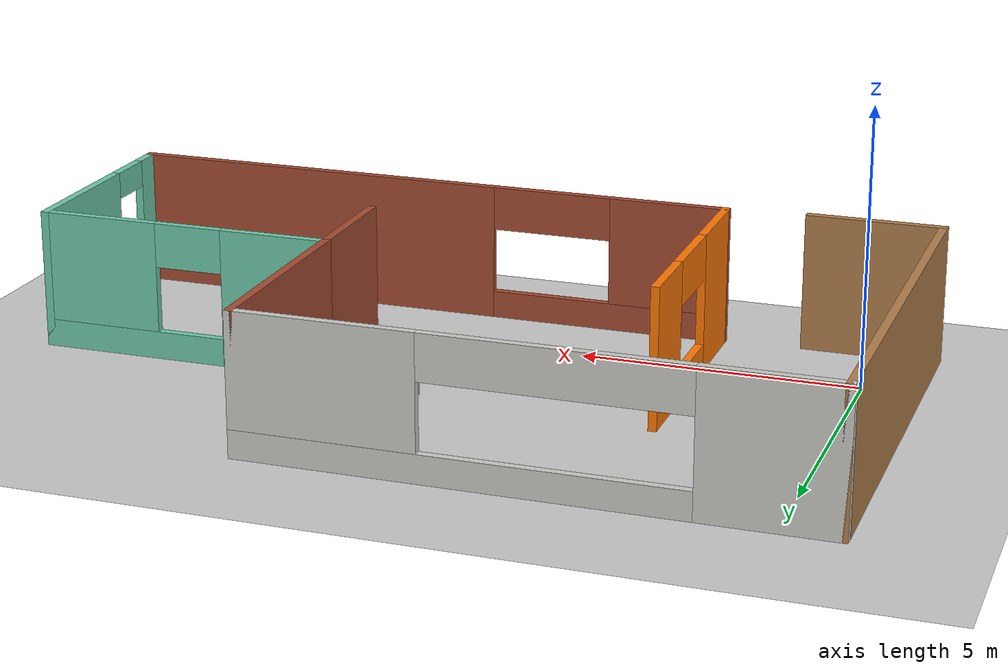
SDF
<sdf version="1.6">
 <world name="default">
  <model name="ground_plane">
   <static>1</static>
   <link name="link">
    <collision name="collision">
     <geometry><plane><normal>0 0 1</normal><size>100 100</size></plane></geometry>
     <surface><friction><ode><mu>100</mu><mu2>50</mu2></ode></friction></surface>
    </collision>
    <visual name="visual">
     <cast_shadows>0</cast_shadows>
     <geometry><plane><normal>0 0 1</normal><size>100 100</size></plane></geometry>
     <material>
      <script><uri>file://media/materials/scripts/gazebo.material</uri><name>Gazebo/Grey</name></script>
     </material>
    </visual>
   </link>
  </model>
  <model name="my_room">
   <pose>6.60739 2.31299 0 0 -0 0</pose>
   <link name="Wall_1">
    <pose>-2.675 4.05 0 0 -0 0</pose>
    <visual name="Wall_1_Visual_0">
     <pose>-3.81694 0 1.25 0 -0 0</pose>
     <geometry><box><size>2.36613 0.15 2.5</size></box></geometry>
     <material>
      <script><uri>file://media/materials/scripts/gazebo.material</uri><name>Gazebo/CeilingTiled</name></script>
      <ambient>0.666667 0.333333 1 1</ambient>
     </material>
     <meta><layer>0</layer></meta>
    </visual>
    <collision name="Wall_1_Collision_0">
     <geometry><box><size>2.36613 0.15 2.5</size></box></geometry>
     <pose>-3.81694 0 1.25 0 -0 0</pose>
    </collision>
    <visual name="Wall_1_Visual_1">
     <pose>1.18306 0 0.25 0 -0 0</pose>
     <geometry><box><size>7.63387 0.15 0.5</size></box></geometry>
     <material>
      <script><uri>file://media/materials/scripts/gazebo.material</uri><name>Gazebo/CeilingTiled</name></script>
      <ambient>0.666667 0.333333 1 1</ambient>
     </material>
     <meta><layer>0</layer></meta>
    </visual>
    <collision name="Wall_1_Collision_1">
     <geometry><box><size>7.63387 0.15 0.5</size></box></geometry>
     <pose>1.18306 0 0.25 0 -0 0</pose>
    </collision>
    <visual name="Wall_1_Visual_2">
     <pose>3.39806 0 1.5 0 -0 0</pose>
     <geometry><box><size>3.20387 0.15 2</size></box></geometry>
     <material>
      <script><uri>file://media/materials/scripts/gazebo.material</uri><name>Gazebo/CeilingTiled</name></script>
      <ambient>0.666667 0.333333 1 1</ambient>
     </material>
     <meta><layer>0</layer></meta>
    </visual>
    <collision name="Wall_1_Collision_2">
     <geometry><box><size>3.20387 0.15 2</size></box></geometry>
     <pose>3.39806 0 1.5 0 -0 0</pose>
    </collision>
    <visual name="Wall_1_Visual_3">
     <pose>-0.418873 0 2.1 0 -0 0</pose>
     <geometry><box><size>4.43 0.15 0.8</size></box></geometry>
     <material>
      <script><uri>file://media/materials/scripts/gazebo.material</uri><name>Gazebo/CeilingTiled</name></script>
      <ambient>0.666667 0.333333 1 1</ambient>
     </material>
     <meta><layer>0</layer></meta>
    </visual>
    <collision name="Wall_1_Collision_3">
     <geometry><box><size>4.43 0.15 0.8</size></box></geometry>
     <pose>-0.418873 0 2.1 0 -0 0</pose>
    </collision>
   </link>
   <link name="Wall_15">
    <pose>-3.75 -1.6 0 0 -0 1.5708</pose>
    <visual name="Wall_15_Visual_0">
     <pose>-1.50843 0 1.25 0 -0 0</pose>
     <geometry><box><size>1.73314 0.15 2.5</size></box></geometry>
     <material>
      <script><uri>file://media/materials/scripts/gazebo.material</uri><name>Gazebo/Grey</name></script>
      <ambient>0.996078 0.47451 0.0196078 1</ambient>
     </material>
     <meta><layer>0</layer></meta>
    </visual>
    <collision name="Wall_15_Collision_0">
     <geometry><box><size>1.73314 0.15 2.5</size></box></geometry>
     <pose>-1.50843 0 1.25 0 -0 0</pose>
    </collision>
    <visual name="Wall_15_Visual_1">
     <pose>0.866573 0 0.25 0 -0 0</pose>
     <geometry><box><size>3.01686 0.15 0.5</size></box></geometry>
     <material>
      <script><uri>file://media/materials/scripts/gazebo.material</uri><name>Gazebo/Grey</name></script>
      <ambient>0.996078 0.47451 0.0196078 1</ambient>
     </material>
     <meta><layer>0</layer></meta>
    </visual>
    <collision name="Wall_15_Collision_1">
     <geometry><box><size>3.01686 0.15 0.5</size></box></geometry>
     <pose>0.866573 0 0.25 0 -0 0</pose>
    </collision>
    <visual name="Wall_15_Visual_2">
     <pose>1.65755 0 1.5 0 -0 0</pose>
     <geometry><box><size>1.43491 0.15 2</size></box></geometry>
     <material>
      <script><uri>file://media/materials/scripts/gazebo.material</uri><name>Gazebo/Grey</name></script>
      <ambient>0.996078 0.47451 0.0196078 1</ambient>
     </material>
     <meta><layer>0</layer></meta>
    </visual>
    <collision name="Wall_15_Collision_2">
     <geometry><box><size>1.43491 0.15 2</size></box></geometry>
     <pose>1.65755 0 1.5 0 -0 0</pose>
    </collision>
    <visual name="Wall_15_Visual_3">
     <pose>0.14912 0 2.1 0 -0 0</pose>
     <geometry><box><size>1.58195 0.15 0.8</size></box></geometry>
     <material>
      <script><uri>file://media/materials/scripts/gazebo.material</uri><name>Gazebo/Grey</name></script>
      <ambient>0.996078 0.47451 0.0196078 1</ambient>
     </material>
     <meta><layer>0</layer></meta>
    </visual>
    <collision name="Wall_15_Collision_3">
     <geometry><box><size>1.58195 0.15 0.8</size></box></geometry>
     <pose>0.14912 0 2.1 0 -0 0</pose>
    </collision>
   </link>
   <link name="Wall_17">
    <collision name="Wall_17_Collision">
     <geometry><box><size>8.25 0.15 2.5</size></box></geometry>
     <pose>0 0 1.25 0 -0 0</pose>
    </collision>
    <visual name="Wall_17_Visual">
     <pose>0 0 1.25 0 -0 0</pose>
     <geometry><box><size>8.25 0.15 2.5</size></box></geometry>
     <material>
      <script><uri>file://media/materials/scripts/gazebo.material</uri><name>Gazebo/Wood</name></script>
      <ambient>0.435294 0.796078 0.67451 1</ambient>
     </material>
     <meta><layer>0</layer></meta>
    </visual>
    <pose>-7.6 0 0 0 0 -1.5708</pose>
   </link>
   <link name="Wall_2">
    <collision name="Wall_2_Collision">
     <geometry><box><size>4 0.15 2.5</size></box></geometry>
     <pose>0 0 1.25 0 -0 0</pose>
    </collision>
    <visual name="Wall_2_Visual">
     <pose>0 0 1.25 0 -0 0</pose>
     <geometry><box><size>4 0.15 2.5</size></box></geometry>
     <material>
      <script><uri>file://media/materials/scripts/gazebo.material</uri><name>Gazebo/Bricks</name></script>
      <ambient>1 1 1 1</ambient>
     </material>
     <meta><layer>0</layer></meta>
    </visual>
    <pose>2.25 2.125 0 0 0 -1.5708</pose>
   </link>
   <link name="Wall_21">
    <collision name="Wall_21_Collision">
     <geometry><box><size>2.5 0.15 2.5</size></box></geometry>
     <pose>0 0 1.25 0 -0 0</pose>
    </collision>
    <visual name="Wall_21_Visual">
     <pose>0 0 1.25 0 -0 0</pose>
     <geometry><box><size>2.5 0.15 2.5</size></box></geometry>
     <material>
      <script><uri>file://media/materials/scripts/gazebo.material</uri><name>Gazebo/Wood</name></script>
      <ambient>1 1 1 1</ambient>
     </material>
     <meta><layer>0</layer></meta>
    </visual>
    <pose>-6.425 -4.05 0 0 -0 0</pose>
   </link>
   <link name="Wall_3">
    <pose>4.925 0.2 0 0 -0 0</pose>
    <visual name="Wall_3_Visual_0">
     <pose>-1.73801 0 1.25 0 -0 0</pose>
     <geometry><box><size>2.02399 0.15 2.5</size></box></geometry>
     <material>
      <script><uri>file://media/materials/scripts/gazebo.material</uri><name>Gazebo/Grey</name></script>
      <ambient>0.435294 0.796078 0.67451 1</ambient>
     </material>
     <meta><layer>0</layer></meta>
    </visual>
    <collision name="Wall_3_Collision_0">
     <geometry><box><size>2.02399 0.15 2.5</size></box></geometry>
     <pose>-1.73801 0 1.25 0 -0 0</pose>
    </collision>
    <visual name="Wall_3_Visual_1">
     <pose>1.01199 0 0.25 0 -0 0</pose>
     <geometry><box><size>3.47601 0.15 0.5</size></box></geometry>
     <material>
      <script><uri>file://media/materials/scripts/gazebo.material</uri><name>Gazebo/Grey</name></script>
      <ambient>0.435294 0.796078 0.67451 1</ambient>
     </material>
     <meta><layer>0</layer></meta>
    </visual>
    <collision name="Wall_3_Collision_1">
     <geometry><box><size>3.47601 0.15 0.5</size></box></geometry>
     <pose>1.01199 0 0.25 0 -0 0</pose>
    </collision>
    <visual name="Wall_3_Visual_2">
     <pose>1.63628 0 1.5 0 -0 0</pose>
     <geometry><box><size>2.22744 0.15 2</size></box></geometry>
     <material>
      <script><uri>file://media/materials/scripts/gazebo.material</uri><name>Gazebo/Grey</name></script>
      <ambient>0.435294 0.796078 0.67451 1</ambient>
     </material>
     <meta><layer>0</layer></meta>
    </visual>
    <collision name="Wall_3_Collision_2">
     <geometry><box><size>2.22744 0.15 2</size></box></geometry>
     <pose>1.63628 0 1.5 0 -0 0</pose>
    </collision>
    <visual name="Wall_3_Visual_3">
     <pose>-0.101725 0 2.1 0 -0 0</pose>
     <geometry><box><size>1.24858 0.15 0.8</size></box></geometry>
     <material>
      <script><uri>file://media/materials/scripts/gazebo.material</uri><name>Gazebo/Grey</name></script>
      <ambient>0.435294 0.796078 0.67451 1</ambient>
     </material>
     <meta><layer>0</layer></meta>
    </visual>
    <collision name="Wall_3_Collision_3">
     <geometry><box><size>1.24858 0.15 0.8</size></box></geometry>
     <pose>-0.101725 0 2.1 0 -0 0</pose>
    </collision>
   </link>
   <link name="Wall_4">
    <pose>7.6 -1.85 0 0 0 -1.5708</pose>
    <visual name="Wall_4_Visual_0">
     <pose>-0.769041 0 1.25 0 -0 0</pose>
     <geometry><box><size>2.71192 0.15 2.5</size></box></geometry>
     <material>
      <script><uri>file://media/materials/scripts/gazebo.material</uri><name>Gazebo/Grey</name></script>
      <ambient>0.435294 0.796078 0.67451 1</ambient>
     </material>
     <meta><layer>0</layer></meta>
    </visual>
    <collision name="Wall_4_Collision_0">
     <geometry><box><size>2.71192 0.15 2.5</size></box></geometry>
     <pose>-0.769041 0 1.25 0 -0 0</pose>
    </collision>
    <visual name="Wall_4_Visual_1">
     <pose>1.80596 0 1.25 0 -0 0</pose>
     <geometry><box><size>0.638081 0.15 2.5</size></box></geometry>
     <material>
      <script><uri>file://media/materials/scripts/gazebo.material</uri><name>Gazebo/Grey</name></script>
      <ambient>0.435294 0.796078 0.67451 1</ambient>
     </material>
     <meta><layer>0</layer></meta>
    </visual>
    <collision name="Wall_4_Collision_1">
     <geometry><box><size>0.638081 0.15 2.5</size></box></geometry>
     <pose>1.80596 0 1.25 0 -0 0</pose>
    </collision>
    <visual name="Wall_4_Visual_2">
     <pose>1.03692 0 2.25 0 -0 0</pose>
     <geometry><box><size>0.9 0.15 0.5</size></box></geometry>
     <material>
      <script><uri>file://media/materials/scripts/gazebo.material</uri><name>Gazebo/Grey</name></script>
      <ambient>0.435294 0.796078 0.67451 1</ambient>
     </material>
     <meta><layer>0</layer></meta>
    </visual>
    <collision name="Wall_4_Collision_2">
     <geometry><box><size>0.9 0.15 0.5</size></box></geometry>
     <pose>1.03692 0 2.25 0 -0 0</pose>
    </collision>
   </link>
   <link name="Wall_5">
    <pose>1.925 -3.9 0 0 -0 3.14159</pose>
    <visual name="Wall_5_Visual_0">
     <pose>-2.20932 0 1.25 0 -0 0</pose>
     <geometry><box><size>7.08135 0.15 2.5</size></box></geometry>
     <material>
      <script><uri>file://media/materials/scripts/gazebo.material</uri><name>Gazebo/Bricks</name></script>
      <ambient>1 1 1 1</ambient>
     </material>
     <meta><layer>0</layer></meta>
    </visual>
    <collision name="Wall_5_Collision_0">
     <geometry><box><size>7.08135 0.15 2.5</size></box></geometry>
     <pose>-2.20932 0 1.25 0 -0 0</pose>
    </collision>
    <visual name="Wall_5_Visual_1">
     <pose>3.54068 0 0.25 0 -0 0</pose>
     <geometry><box><size>4.41865 0.15 0.5</size></box></geometry>
     <material>
      <script><uri>file://media/materials/scripts/gazebo.material</uri><name>Gazebo/Bricks</name></script>
      <ambient>1 1 1 1</ambient>
     </material>
     <meta><layer>0</layer></meta>
    </visual>
    <collision name="Wall_5_Collision_1">
     <geometry><box><size>4.41865 0.15 0.5</size></box></geometry>
     <pose>3.54068 0 0.25 0 -0 0</pose>
    </collision>
    <visual name="Wall_5_Visual_2">
     <pose>4.64744 0 1.5 0 -0 0</pose>
     <geometry><box><size>2.20512 0.15 2</size></box></geometry>
     <material>
      <script><uri>file://media/materials/scripts/gazebo.material</uri><name>Gazebo/Bricks</name></script>
      <ambient>1 1 1 1</ambient>
     </material>
     <meta><layer>0</layer></meta>
    </visual>
    <collision name="Wall_5_Collision_2">
     <geometry><box><size>2.20512 0.15 2</size></box></geometry>
     <pose>4.64744 0 1.5 0 -0 0</pose>
    </collision>
    <visual name="Wall_5_Visual_3">
     <pose>2.43811 0 2.1 0 -0 0</pose>
     <geometry><box><size>2.21352 0.15 0.8</size></box></geometry>
     <material>
      <script><uri>file://media/materials/scripts/gazebo.material</uri><name>Gazebo/Bricks</name></script>
      <ambient>1 1 1 1</ambient>
     </material>
     <meta><layer>0</layer></meta>
    </visual>
    <collision name="Wall_5_Collision_3">
     <geometry><box><size>2.21352 0.15 0.8</size></box></geometry>
     <pose>2.43811 0 2.1 0 -0 0</pose>
    </collision>
   </link>
   <link name="Wall_7">
    <collision name="Wall_7_Collision">
     <geometry><box><size>2.25 0.15 2.5</size></box></geometry>
     <pose>0 0 1.25 0 -0 0</pose>
    </collision>
    <visual name="Wall_7_Visual">
     <pose>0 0 1.25 0 -0 0</pose>
     <geometry><box><size>2.25 0.15 2.5</size></box></geometry>
     <material>
      <script><uri>file://media/materials/scripts/gazebo.material</uri><name>Gazebo/Bricks</name></script>
      <ambient>1 1 1 1</ambient>
     </material>
     <meta><layer>0</layer></meta>
    </visual>
    <pose>2.25 -0.85 0 0 0 -1.5708</pose>
   </link>
   <static>1</static>
  </model>
  <model name="bookshelf">
   <static>1</static>
   <link name="link">
    <inertial><mass>1</mass></inertial>
    <collision name="back">
     <pose>0 0.005 0.6 0 -0 0</pose>
     <geometry><box><size>0.9 0.01 1.2</size></box></geometry>
    </collision>
    <visual name="visual1">
     <pose>0 0.005 0.6 0 -0 0</pose>
     <geometry><box><size>0.9 0.01 1.2</size></box></geometry>
     <material>
      <script><uri>file://media/materials/scripts/gazebo.material</uri><name>Gazebo/Wood</name></script>
     </material>
    </visual>
    <collision name="left_side">
     <pose>0.45 -0.195 0.6 0 -0 0</pose>
     <geometry><box><size>0.02 0.4 1.2</size></box></geometry>
    </collision>
    <visual name="visual2">
     <pose>0.45 -0.195 0.6 0 -0 0</pose>
     <geometry><box><size>0.02 0.4 1.2</size></box></geometry>
     <material>
      <script><uri>file://media/materials/scripts/gazebo.material</uri><name>Gazebo/Wood</name></script>
     </material>
    </visual>
    <collision name="right_side">
     <pose>-0.45 -0.195 0.6 0 -0 0</pose>
     <geometry><box><size>0.02 0.4 1.2</size></box></geometry>
    </collision>
    <visual name="visual3">
     <pose>-0.45 -0.195 0.6 0 -0 0</pose>
     <geometry><box><size>0.02 0.4 1.2</size></box></geometry>
     <material>
      <script><uri>file://media/materials/scripts/gazebo.material</uri><name>Gazebo/Wood</name></script>
     </material>
    </visual>
    <collision name="bottom">
     <pose>0 -0.195 0.03 0 -0 0</pose>
     <geometry><box><size>0.88 0.4 0.06</size></box></geometry>
    </collision>
    <visual name="visual4">
     <pose>0 -0.195 0.03 0 -0 0</pose>
     <geometry><box><size>0.88 0.4 0.06</size></box></geometry>
     <material>
      <script><uri>file://media/materials/scripts/gazebo.material</uri><name>Gazebo/Wood</name></script>
     </material>
    </visual>
    <collision name="top">
     <pose>0 -0.195 1.19 0 -0 0</pose>
     <geometry><box><size>0.88 0.4 0.02</size></box></geometry>
    </collision>
    <visual name="visual5">
     <pose>0 -0.195 1.19 0 -0 0</pose>
     <geometry><box><size>0.88 0.4 0.02</size></box></geometry>
     <material>
      <script><uri>file://media/materials/scripts/gazebo.material</uri><name>Gazebo/Wood</name></script>
     </material>
    </visual>
    <collision name="low_shelf">
     <pose>0 -0.195 0.43 0 -0 0</pose>
     <geometry><box><size>0.88 0.4 0.02</size></box></geometry>
    </collision>
    <visual name="visual6">
     <pose>0 -0.195 0.43 0 -0 0</pose>
     <geometry><box><size>0.88 0.4 0.02</size></box></geometry>
     <material>
      <script><uri>file://media/materials/scripts/gazebo.material</uri><name>Gazebo/Wood</name></script>
     </material>
    </visual>
    <collision name="high_shelf">
     <pose>0 -0.195 0.8 0 -0 0</pose>
     <geometry><box><size>0.88 0.4 0.02</size></box></geometry>
    </collision>
    <visual name="visual7">
     <pose>0 -0.195 0.8 0 -0 0</pose>
     <geometry><box><size>0.88 0.4 0.02</size></box></geometry>
     <material>
      <script><uri>file://media/materials/scripts/gazebo.material</uri><name>Gazebo/Wood</name></script>
     </material>
    </visual>
   </link>
   <pose>9.62343 2.02293 0 0 -0 0</pose>
  </model>
  <model name="table">
   <static>1</static>
   <link name="link">
    <collision name="surface">
     <pose>0 0 1 0 -0 0</pose>
     <geometry><box><size>1.5 0.8 0.03</size></box></geometry>
     <surface><friction><ode><mu>0.6</mu><mu2>0.6</mu2></ode></friction></surface>
    </collision>
    <visual name="visual1">
     <pose>0 0 1 0 -0 0</pose>
     <geometry><box><size>1.5 0.8 0.03</size></box></geometry>
     <material>
      <script><uri>file://media/materials/scripts/gazebo.material</uri><name>Gazebo/Wood</name></script>
     </material>
    </visual>
    <collision name="front_left_leg">
     <pose>0.68 0.38 0.5 0 -0 0</pose>
     <geometry><cylinder><radius>0.02</radius><length>1</length></cylinder></geometry>
    </collision>
    <visual name="front_left_leg">
     <pose>0.68 0.38 0.5 0 -0 0</pose>
     <geometry><cylinder><radius>0.02</radius><length>1</length></cylinder></geometry>
     <material>
      <script><uri>file://media/materials/scripts/gazebo.material</uri><name>Gazebo/Grey</name></script>
     </material>
    </visual>
    <collision name="front_right_leg">
     <pose>0.68 -0.38 0.5 0 -0 0</pose>
     <geometry><cylinder><radius>0.02</radius><length>1</length></cylinder></geometry>
    </collision>
    <visual name="front_right_leg">
     <pose>0.68 -0.38 0.5 0 -0 0</pose>
     <geometry><cylinder><radius>0.02</radius><length>1</length></cylinder></geometry>
     <material>
      <script><uri>file://media/materials/scripts/gazebo.material</uri><name>Gazebo/Grey</name></script>
     </material>
    </visual>
    <collision name="back_right_leg">
     <pose>-0.68 -0.38 0.5 0 -0 0</pose>
     <geometry><cylinder><radius>0.02</radius><length>1</length></cylinder></geometry>
    </collision>
    <visual name="back_right_leg">
     <pose>-0.68 -0.38 0.5 0 -0 0</pose>
     <geometry><cylinder><radius>0.02</radius><length>1</length></cylinder></geometry>
     <material>
      <script><uri>file://media/materials/scripts/gazebo.material</uri><name>Gazebo/Grey</name></script>
     </material>
    </visual>
    <collision name="back_left_leg">
     <pose>-0.68 0.38 0.5 0 -0 0</pose>
     <geometry><cylinder><radius>0.02</radius><length>1</length></cylinder></geometry>
    </collision>
    <visual name="back_left_leg">
     <pose>-0.68 0.38 0.5 0 -0 0</pose>
     <geometry><cylinder><radius>0.02</radius><length>1</length></cylinder></geometry>
     <material>
      <script><uri>file://media/materials/scripts/gazebo.material</uri><name>Gazebo/Grey</name></script>
     </material>
    </visual>
   </link>
   <pose>7.7757 5.48796 0 0 -0 0</pose>
  </model>
  <model name="table_0">
   <static>1</static>
   <link name="link">
    <collision name="surface">
     <pose>0 0 1 0 -0 0</pose>
     <geometry><box><size>1.5 0.8 0.03</size></box></geometry>
     <surface><friction><ode><mu>0.6</mu><mu2>0.6</mu2></ode></friction></surface>
    </collision>
    <visual name="visual1">
     <pose>0 0 1 0 -0 0</pose>
     <geometry><box><size>1.5 0.8 0.03</size></box></geometry>
     <material>
      <script><uri>file://media/materials/scripts/gazebo.material</uri><name>Gazebo/Wood</name></script>
     </material>
    </visual>
    <collision name="front_left_leg">
     <pose>0.68 0.38 0.5 0 -0 0</pose>
     <geometry><cylinder><radius>0.02</radius><length>1</length></cylinder></geometry>
    </collision>
    <visual name="front_left_leg">
     <pose>0.68 0.38 0.5 0 -0 0</pose>
     <geometry><cylinder><radius>0.02</radius><length>1</length></cylinder></geometry>
     <material>
      <script><uri>file://media/materials/scripts/gazebo.material</uri><name>Gazebo/Grey</name></script>
     </material>
    </visual>
    <collision name="front_right_leg">
     <pose>0.68 -0.38 0.5 0 -0 0</pose>
     <geometry><cylinder><radius>0.02</radius><length>1</length></cylinder></geometry>
    </collision>
    <visual name="front_right_leg">
     <pose>0.68 -0.38 0.5 0 -0 0</pose>
     <geometry><cylinder><radius>0.02</radius><length>1</length></cylinder></geometry>
     <material>
      <script><uri>file://media/materials/scripts/gazebo.material</uri><name>Gazebo/Grey</name></script>
     </material>
    </visual>
    <collision name="back_right_leg">
     <pose>-0.68 -0.38 0.5 0 -0 0</pose>
     <geometry><cylinder><radius>0.02</radius><length>1</length></cylinder></geometry>
    </collision>
    <visual name="back_right_leg">
     <pose>-0.68 -0.38 0.5 0 -0 0</pose>
     <geometry><cylinder><radius>0.02</radius><length>1</length></cylinder></geometry>
     <material>
      <script><uri>file://media/materials/scripts/gazebo.material</uri><name>Gazebo/Grey</name></script>
     </material>
    </visual>
    <collision name="back_left_leg">
     <pose>-0.68 0.38 0.5 0 -0 0</pose>
     <geometry><cylinder><radius>0.02</radius><length>1</length></cylinder></geometry>
    </collision>
    <visual name="back_left_leg">
     <pose>-0.68 0.38 0.5 0 -0 0</pose>
     <geometry><cylinder><radius>0.02</radius><length>1</length></cylinder></geometry>
     <material>
      <script><uri>file://media/materials/scripts/gazebo.material</uri><name>Gazebo/Grey</name></script>
     </material>
    </visual>
   </link>
   <pose>7.76626 4.32656 0 0 -0 0</pose>
  </model>
  <model name="table_1">
   <static>1</static>
   <link name="link">
    <collision name="surface">
     <pose>0 0 1 0 -0 0</pose>
     <geometry><box><size>1.5 0.8 0.03</size></box></geometry>
     <surface><friction><ode><mu>0.6</mu><mu2>0.6</mu2></ode></friction></surface>
    </collision>
    <visual name="visual1">
     <pose>0 0 1 0 -0 0</pose>
     <geometry><box><size>1.5 0.8 0.03</size></box></geometry>
     <material>
      <script><uri>file://media/materials/scripts/gazebo.material</uri><name>Gazebo/Wood</name></script>
     </material>
    </visual>
    <collision name="front_left_leg">
     <pose>0.68 0.38 0.5 0 -0 0</pose>
     <geometry><cylinder><radius>0.02</radius><length>1</length></cylinder></geometry>
    </collision>
    <visual name="front_left_leg">
     <pose>0.68 0.38 0.5 0 -0 0</pose>
     <geometry><cylinder><radius>0.02</radius><length>1</length></cylinder></geometry>
     <material>
      <script><uri>file://media/materials/scripts/gazebo.material</uri><name>Gazebo/Grey</name></script>
     </material>
    </visual>
    <collision name="front_right_leg">
     <pose>0.68 -0.38 0.5 0 -0 0</pose>
     <geometry><cylinder><radius>0.02</radius><length>1</length></cylinder></geometry>
    </collision>
    <visual name="front_right_leg">
     <pose>0.68 -0.38 0.5 0 -0 0</pose>
     <geometry><cylinder><radius>0.02</radius><length>1</length></cylinder></geometry>
     <material>
      <script><uri>file://media/materials/scripts/gazebo.material</uri><name>Gazebo/Grey</name></script>
     </material>
    </visual>
    <collision name="back_right_leg">
     <pose>-0.68 -0.38 0.5 0 -0 0</pose>
     <geometry><cylinder><radius>0.02</radius><length>1</length></cylinder></geometry>
    </collision>
    <visual name="back_right_leg">
     <pose>-0.68 -0.38 0.5 0 -0 0</pose>
     <geometry><cylinder><radius>0.02</radius><length>1</length></cylinder></geometry>
     <material>
      <script><uri>file://media/materials/scripts/gazebo.material</uri><name>Gazebo/Grey</name></script>
     </material>
    </visual>
    <collision name="back_left_leg">
     <pose>-0.68 0.38 0.5 0 -0 0</pose>
     <geometry><cylinder><radius>0.02</radius><length>1</length></cylinder></geometry>
    </collision>
    <visual name="back_left_leg">
     <pose>-0.68 0.38 0.5 0 -0 0</pose>
     <geometry><cylinder><radius>0.02</radius><length>1</length></cylinder></geometry>
     <material>
      <script><uri>file://media/materials/scripts/gazebo.material</uri><name>Gazebo/Grey</name></script>
     </material>
    </visual>
   </link>
   <pose>7.76108 3.1442 0 0 -0 0</pose>
  </model>
 </world>
</sdf>
